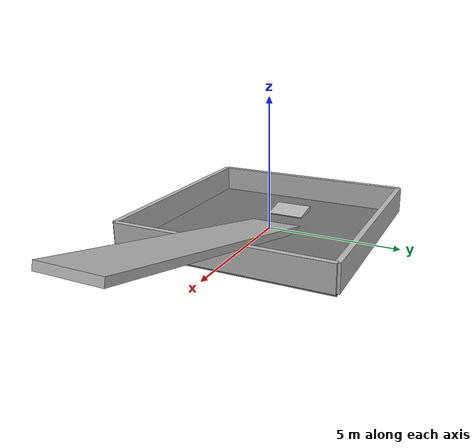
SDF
<sdf version="1.10">
 <world name="arena7">
  <physics name="ode_cpu" type="ode">
   <max_step_size>0.002</max_step_size>
   <real_time_update_rate>500</real_time_update_rate>
   <real_time_factor>1.0</real_time_factor>
   <ode>
    <solver><type>quick</type><iters>50</iters><sor>1.3</sor></solver>
    <constraints><cfm>0.0</cfm><erp>0.2</erp></constraints>
   </ode>
  </physics>
  <plugin name="gz::sim::systems::Physics" filename="gz-sim-physics-system"/>
  <plugin name="gz::sim::systems::UserCommands" filename="gz-sim-user-commands-system"/>
  <plugin name="gz::sim::systems::SceneBroadcaster" filename="gz-sim-scene-broadcaster-system"/>
  <plugin name="gz::sim::systems::Contact" filename="gz-sim-contact-system"/>
  <gravity>0 0 -9.81</gravity>
  <magnetic_field>5.5644999999999998e-06 2.2875799999999999e-05 -4.2388400000000002e-05</magnetic_field>
  <atmosphere type="adiabatic"/>
  <scene><ambient>0.5 0.5 0.5 1</ambient><background>0.7 0.7 0.75 1</background><shadows>false</shadows></scene>
  <model name="arena_floor">
   <static>true</static>
   <pose>0 0 -0.05 0 0 0</pose>
   <link name="floor">
    <collision name="col">
     <geometry><box><size>8 8 0.1</size></box></geometry>
     <surface>
      <friction><ode><mu>0.9</mu><mu2>0.9</mu2><fdir1>1 0 0</fdir1></ode></friction>
      <bounce><restitution_coefficient>0.03</restitution_coefficient><threshold>1e3</threshold></bounce>
      <contact><ode><kp>1e6</kp><kd>1e3</kd><max_vel>1.0</max_vel><min_depth>0.001</min_depth></ode></contact>
     </surface>
    </collision>
    <visual name="vis">
     <geometry><box><size>8 8 0.1</size></box></geometry>
     <material><ambient>0.35 0.35 0.35 1</ambient><diffuse>0.45 0.45 0.45 1</diffuse></material>
    </visual>
   </link>
  </model>
  <model name="wall_north">
   <static>true</static>
   <link name="link">
    <pose>0 4 0.5 0 0 0</pose>
    <collision name="col"><geometry><box><size>8 0.2 1.0</size></box></geometry></collision>
    <visual name="vis"><geometry><box><size>8 0.2 1.0</size></box></geometry></visual>
   </link>
  </model>
  <model name="wall_south">
   <static>true</static>
   <link name="link">
    <pose>0 -4 0.5 0 0 0</pose>
    <collision name="col"><geometry><box><size>8 0.2 1.0</size></box></geometry></collision>
    <visual name="vis"><geometry><box><size>8 0.2 1.0</size></box></geometry></visual>
   </link>
  </model>
  <model name="wall_east">
   <static>true</static>
   <link name="link">
    <pose>4 0 0.5 0 0 0</pose>
    <collision name="col"><geometry><box><size>0.2 8 1.0</size></box></geometry></collision>
    <visual name="vis"><geometry><box><size>0.2 8 1.0</size></box></geometry></visual>
   </link>
  </model>
  <model name="wall_west">
   <static>true</static>
   <link name="link">
    <pose>-4 0 0.5 0 0 0</pose>
    <collision name="col"><geometry><box><size>0.2 8 1.0</size></box></geometry></collision>
    <visual name="vis"><geometry><box><size>0.2 8 1.0</size></box></geometry></visual>
   </link>
  </model>
  <model name="ramp_north">
   <static>true</static>
   <link name="link">
    <pose>4.3 0 1.1 0 -0.2419 0</pose>
    <collision name="col"><geometry><box><size>12.0 2 0.25</size></box></geometry></collision>
    <visual name="vis"><geometry><box><size>12.0 2 0.25</size></box></geometry></visual>
   </link>
  </model>
  <model name="ramp_west">
   <static>true</static>
   <link name="link">
    <pose>-2 0 0 0 0.1745 0</pose>
    <collision name="col"><geometry><box><size>1.0 1.42 0.25</size></box></geometry></collision>
    <visual name="vis"><geometry><box><size>1.0 1.42 0.25</size></box></geometry></visual>
   </link>
  </model>
  <light name="sun" type="directional">
   <pose>0 0 10 0 0 0</pose>
   <intensity>1</intensity>
   <direction>-0.5 0.10000000000000001 -0.90000000000000002</direction>
   <diffuse>0.800000012 0.800000012 0.800000012 1</diffuse>
   <specular>0.200000003 0.200000003 0.200000003 1</specular>
   <attenuation>
    <range>1000</range>
    <linear>0.01</linear>
    <constant>0.90000000000000002</constant>
    <quadratic>0.001</quadratic>
   </attenuation>
   <spot><inner_angle>0</inner_angle><outer_angle>0</outer_angle><falloff>0</falloff></spot>
  </light>
 </world>
</sdf>
